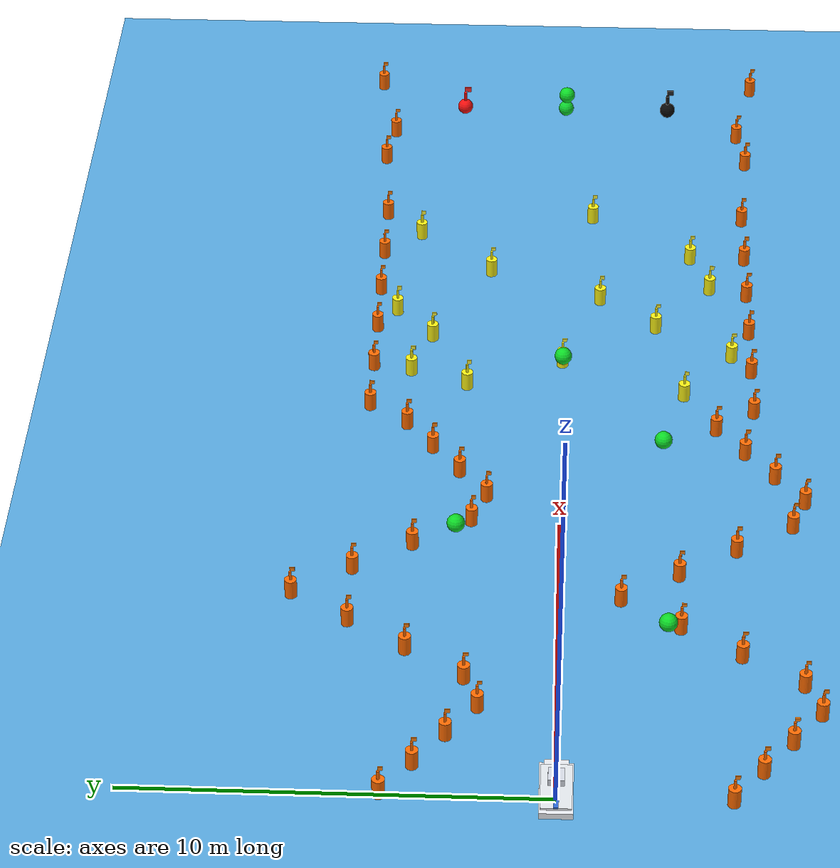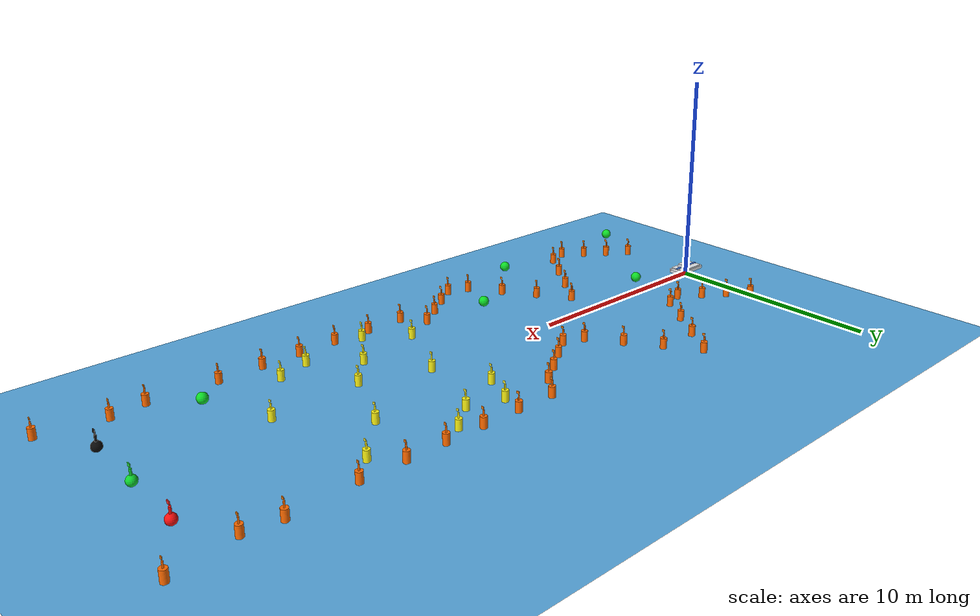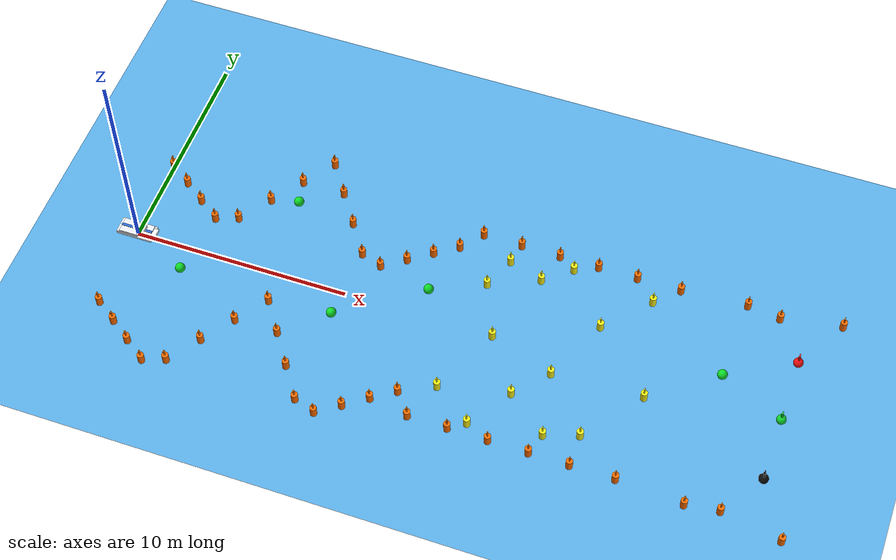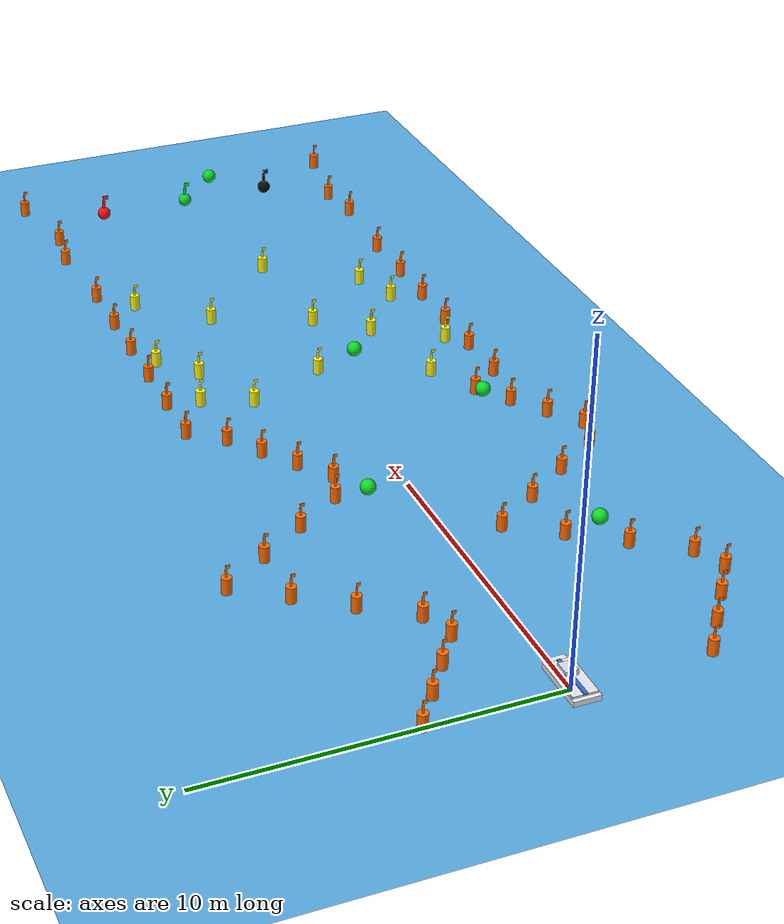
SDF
<?xml version="1.0" ?>
<sdf version="1.9">
  <world name="water_world">

    <!-- FIX: Improved physics for stable floating boat (less vibration, better damping) -->
    <physics name="4ms" type="ode">
      <max_step_size>0.004</max_step_size>
      <real_time_factor>1.0</real_time_factor>
      <gravity>0 0 -9.81</gravity>
      <ode>
        <!-- Remove preset="quick" (not supported in Gazebo Fortress) - use standard parameters instead -->
        <solver>
          <type>quick</type>
          <iters>50</iters>
          <precon_iters>0</precon_iters>
          <sor>1.3</sor>
          <use_dynamic_moi_rescaling>true</use_dynamic_moi_rescaling>
        </solver>
        <constraints>
          <cfm>0.01</cfm>
          <erp>0.8</erp>
          <contact_max_correcting_vel>1.0</contact_max_correcting_vel>
          <contact_surface_layer>0.01</contact_surface_layer>
        </constraints>
      </ode>
    </physics>

    <plugin filename="libignition-gazebo-physics-system.so" name="ignition::gazebo::systems::Physics"/>
    <plugin filename="libignition-gazebo-user-commands-system.so" name="ignition::gazebo::systems::UserCommands"/>
    <plugin filename="libignition-gazebo-scene-broadcaster-system.so" name="ignition::gazebo::systems::SceneBroadcaster"/>
    <plugin filename="libignition-gazebo-sensors-system.so" name="ignition::gazebo::systems::Sensors">
      <render_engine>ogre2</render_engine>
    </plugin>
    <plugin filename="libignition-gazebo-buoyancy-system.so" name="ignition::gazebo::systems::Buoyancy">
      <graded_buoyancy>
        <default_density>1000</default_density>
        <density_change>
          <above_depth>0</above_depth>
          <density>1</density>
        </density_change>
      </graded_buoyancy>
      <!-- Buoyancy yalnızca duba modelleri; usv_model yok (SetEntityPose ile çakışmayı önler) -->
      <enable>boundary_buoy_orange_01</enable>
      <enable>usv_model</enable>
      <enable>boundary_buoy_orange_02</enable>
      <enable>boundary_buoy_orange_03</enable>
      <enable>boundary_buoy_orange_04</enable>
      <enable>boundary_buoy_orange_05</enable>
      <enable>boundary_buoy_orange_06</enable>
      <enable>boundary_buoy_orange_07</enable>
      <enable>boundary_buoy_orange_08</enable>
      <enable>boundary_buoy_orange_09</enable>
      <enable>boundary_buoy_orange_10</enable>
      <enable>boundary_buoy_orange_11</enable>
      <enable>boundary_buoy_orange_12</enable>
      <enable>boundary_buoy_orange_13</enable>
      <enable>boundary_buoy_orange_14</enable>
      <enable>boundary_buoy_orange_15</enable>
      <enable>boundary_buoy_orange_16</enable>
      <enable>boundary_buoy_orange_17</enable>
      <enable>boundary_buoy_orange_18</enable>
      <enable>boundary_buoy_orange_19</enable>
      <enable>boundary_buoy_orange_20</enable>
      <enable>boundary_buoy_orange_21</enable>
      <enable>boundary_buoy_orange_22</enable>
      <enable>boundary_buoy_orange_23</enable>
      <enable>boundary_buoy_orange_24</enable>
      <enable>boundary_buoy_orange_25</enable>
      <enable>boundary_buoy_orange_26</enable>
      <enable>boundary_buoy_orange_27</enable>
      <enable>boundary_buoy_orange_28</enable>
      <enable>boundary_buoy_orange_29</enable>
      <enable>boundary_buoy_orange_30</enable>
      <enable>boundary_buoy_orange_67</enable>
      <enable>boundary_buoy_orange_68</enable>
      <enable>boundary_buoy_orange_69</enable>
      <enable>boundary_buoy_orange_70</enable>
      <enable>boundary_buoy_orange_71</enable>
      <enable>boundary_buoy_orange_72</enable>
      <enable>boundary_buoy_orange_73</enable>
      <enable>boundary_buoy_orange_74</enable>
      <enable>boundary_buoy_orange_75</enable>
      <enable>boundary_buoy_orange_76</enable>
      <enable>boundary_buoy_orange_77</enable>
      <enable>boundary_buoy_orange_78</enable>
      <enable>boundary_buoy_orange_79</enable>
      <enable>boundary_buoy_orange_80</enable>
      <enable>boundary_buoy_orange_81</enable>
      <enable>boundary_buoy_orange_82</enable>
      <enable>boundary_buoy_orange_83</enable>
      <enable>boundary_buoy_orange_84</enable>
      <enable>obstacle_buoy_yellow_01</enable>
      <enable>obstacle_buoy_yellow_02</enable>
      <enable>obstacle_buoy_yellow_03</enable>
      <enable>obstacle_buoy_yellow_04</enable>
      <enable>obstacle_buoy_yellow_05</enable>
      <enable>obstacle_buoy_yellow_06</enable>
      <enable>obstacle_buoy_yellow_07</enable>
      <enable>obstacle_buoy_yellow_08</enable>
      <enable>obstacle_buoy_yellow_09</enable>
      <enable>obstacle_buoy_yellow_10</enable>
      <enable>obstacle_buoy_yellow_11</enable>
      <enable>obstacle_buoy_yellow_12</enable>
      <enable>obstacle_buoy_yellow_13</enable>
      <enable>obstacle_buoy_yellow_14</enable>
      <enable>target_buoy_red</enable>
      <enable>target_buoy_green</enable>
      <enable>target_buoy_black</enable>
    </plugin>

    <scene>
      <ambient>0.72 0.77 0.82 1</ambient>
      <background>0.80 0.89 0.98 1</background>
      <shadows>false</shadows>
    </scene>

    <light type="directional" name="sun">
      <cast_shadows>false</cast_shadows>
      <pose>0 0 16 0 0 -1.570796</pose>
      <diffuse>0.92 0.92 0.92 1</diffuse>
      <specular>0.18 0.18 0.18 1</specular>
      <attenuation>
        <range>1200</range>
        <constant>0.9</constant>
        <linear>0.01</linear>
        <quadratic>0.001</quadratic>
      </attenuation>
      <direction>-0.35 -0.15 -0.92</direction>
    </light>

    <model name="water_plane">
      <static>true</static>
      <link name="link">
        <!-- FIX: Improved water plane contact physics for boat floating stability -->
        <collision name="collision">
          <geometry>
            <plane><normal>0 0 1</normal><size>80 80</size></plane>
          </geometry>
          <surface>
            <friction>
              <ode>
                <mu>0.1</mu>
                <mu2>0.1</mu2>
              </ode>
            </friction>
            <contact>
              <ode>
                <soft_cfm>0.001</soft_cfm>
                <soft_erp>0.9</soft_erp>
                <max_vel>0.1</max_vel>
              </ode>
            </contact>
          </surface>
        </collision>
        <visual name="visual">
          <geometry>
            <plane><normal>0 0 1</normal><size>80 80</size></plane>
          </geometry>
          <material>
            <ambient>0.35 0.67 0.89 1</ambient>
            <diffuse>0.35 0.67 0.89 1</diffuse>
            <specular>0.08 0.08 0.08 1</specular>
          </material>
        </visual>
      </link>
    </model>

    <!-- PARKUR 1: Zigzag slalom koridor                  -->
    <!-- Merkez: (0,0)→(2.5,3.5)→(-2.5,7)→(2.5,10.5)→(0,14) -->
    <!-- Genişlik: 8 m | Aralık: 1 m | 3 kıvrım          -->
    <include><uri>model://boundary_buoy_orange</uri><name>boundary_buoy_orange_01</name><pose>0 4 0 0 0 -1.570796</pose></include>
    <include><uri>model://boundary_buoy_orange</uri><name>boundary_buoy_orange_02</name><pose>1 3.29 0 0 0 -1.570796</pose></include>
    <include><uri>model://boundary_buoy_orange</uri><name>boundary_buoy_orange_03</name><pose>2 2.57 0 0 0 -1.570796</pose></include>
    <include><uri>model://boundary_buoy_orange</uri><name>boundary_buoy_orange_04</name><pose>3 1.86 0 0 0 -1.570796</pose></include>
    <include><uri>model://boundary_buoy_orange</uri><name>boundary_buoy_orange_05</name><pose>4 2.21 0 0 0 -1.570796</pose></include>
    <include><uri>model://boundary_buoy_orange</uri><name>boundary_buoy_orange_06</name><pose>5 3.64 0 0 0 -1.570796</pose></include>
    <include><uri>model://boundary_buoy_orange</uri><name>boundary_buoy_orange_07</name><pose>6 5.07 0 0 0 -1.570796</pose></include>
    <include><uri>model://boundary_buoy_orange</uri><name>boundary_buoy_orange_08</name><pose>7 6.5 0 0 0 -1.570796</pose></include>
    <include><uri>model://boundary_buoy_orange</uri><name>boundary_buoy_orange_09</name><pose>8 5.07 0 0 0 -1.570796</pose></include>
    <include><uri>model://boundary_buoy_orange</uri><name>boundary_buoy_orange_10</name><pose>9 3.64 0 0 0 -1.570796</pose></include>
    <include><uri>model://boundary_buoy_orange</uri><name>boundary_buoy_orange_11</name><pose>10 2.21 0 0 0 -1.570796</pose></include>
    <include><uri>model://boundary_buoy_orange</uri><name>boundary_buoy_orange_12</name><pose>11 1.86 0 0 0 -1.570796</pose></include>
    <include><uri>model://boundary_buoy_orange</uri><name>boundary_buoy_orange_13</name><pose>12 2.57 0 0 0 -1.570796</pose></include>
    <include><uri>model://boundary_buoy_orange</uri><name>boundary_buoy_orange_14</name><pose>13 3.29 0 0 0 -1.570796</pose></include>
    <include><uri>model://boundary_buoy_orange</uri><name>boundary_buoy_orange_15</name><pose>14 4 0 0 0 -1.570796</pose></include>
    <include><uri>model://boundary_buoy_orange</uri><name>boundary_buoy_orange_16</name><pose>0 -4 0 0 0 -1.570796</pose></include>
    <include><uri>model://boundary_buoy_orange</uri><name>boundary_buoy_orange_17</name><pose>1 -4.71 0 0 0 -1.570796</pose></include>
    <include><uri>model://boundary_buoy_orange</uri><name>boundary_buoy_orange_18</name><pose>2 -5.43 0 0 0 -1.570796</pose></include>
    <include><uri>model://boundary_buoy_orange</uri><name>boundary_buoy_orange_19</name><pose>3 -6.14 0 0 0 -1.570796</pose></include>
    <include><uri>model://boundary_buoy_orange</uri><name>boundary_buoy_orange_20</name><pose>4 -5.79 0 0 0 -1.570796</pose></include>
    <include><uri>model://boundary_buoy_orange</uri><name>boundary_buoy_orange_21</name><pose>5 -4.36 0 0 0 -1.570796</pose></include>
    <include><uri>model://boundary_buoy_orange</uri><name>boundary_buoy_orange_22</name><pose>6 -2.93 0 0 0 -1.570796</pose></include>
    <include><uri>model://boundary_buoy_orange</uri><name>boundary_buoy_orange_23</name><pose>7 -1.5 0 0 0 -1.570796</pose></include>
    <include><uri>model://boundary_buoy_orange</uri><name>boundary_buoy_orange_24</name><pose>8 -2.93 0 0 0 -1.570796</pose></include>
    <include><uri>model://boundary_buoy_orange</uri><name>boundary_buoy_orange_25</name><pose>9 -4.36 0 0 0 -1.570796</pose></include>
    <include><uri>model://boundary_buoy_orange</uri><name>boundary_buoy_orange_26</name><pose>10 -5.79 0 0 0 -1.570796</pose></include>
    <include><uri>model://boundary_buoy_orange</uri><name>boundary_buoy_orange_27</name><pose>11 -6.14 0 0 0 -1.570796</pose></include>
    <include><uri>model://boundary_buoy_orange</uri><name>boundary_buoy_orange_28</name><pose>12 -5.43 0 0 0 -1.570796</pose></include>
    <include><uri>model://boundary_buoy_orange</uri><name>boundary_buoy_orange_29</name><pose>13 -4.71 0 0 0 -1.570796</pose></include>
    <include><uri>model://boundary_buoy_orange</uri><name>boundary_buoy_orange_30</name><pose>14 -4 0 0 0 -1.570796</pose></include>

    <!-- PARKUR 2: Engel kaçınma                         -->
    <!-- Turuncu sınır dubalar + sarı engel dubalar       -->
    <include><uri>model://boundary_buoy_orange</uri><name>boundary_buoy_orange_67</name><pose>14.8 5 0 0 0 -1.570796</pose></include>
    <include><uri>model://boundary_buoy_orange</uri><name>boundary_buoy_orange_68</name><pose>14.8 -5 0 0 0 -1.570796</pose></include>
    <include><uri>model://boundary_buoy_orange</uri><name>boundary_buoy_orange_69</name><pose>16.6 5 0 0 0 -1.570796</pose></include>
    <include><uri>model://boundary_buoy_orange</uri><name>boundary_buoy_orange_70</name><pose>16.6 -5 0 0 0 -1.570796</pose></include>
    <include><uri>model://boundary_buoy_orange</uri><name>boundary_buoy_orange_71</name><pose>18.4 5 0 0 0 -1.570796</pose></include>
    <include><uri>model://boundary_buoy_orange</uri><name>boundary_buoy_orange_72</name><pose>18.4 -5 0 0 0 -1.570796</pose></include>
    <include><uri>model://boundary_buoy_orange</uri><name>boundary_buoy_orange_73</name><pose>20.2 5 0 0 0 -1.570796</pose></include>
    <include><uri>model://boundary_buoy_orange</uri><name>boundary_buoy_orange_74</name><pose>20.2 -5 0 0 0 -1.570796</pose></include>
    <include><uri>model://boundary_buoy_orange</uri><name>boundary_buoy_orange_75</name><pose>22 5 0 0 0 -1.570796</pose></include>
    <include><uri>model://boundary_buoy_orange</uri><name>boundary_buoy_orange_76</name><pose>22 -5 0 0 0 -1.570796</pose></include>
    <include><uri>model://boundary_buoy_orange</uri><name>boundary_buoy_orange_77</name><pose>24 5 0 0 0 -1.570796</pose></include>
    <include><uri>model://boundary_buoy_orange</uri><name>boundary_buoy_orange_78</name><pose>24 -5 0 0 0 -1.570796</pose></include>
    <include><uri>model://boundary_buoy_orange</uri><name>boundary_buoy_orange_79</name><pose>27 5.2 0 0 0 -1.570796</pose></include>
    <include><uri>model://boundary_buoy_orange</uri><name>boundary_buoy_orange_80</name><pose>27 -5.2 0 0 0 -1.570796</pose></include>

    <include><uri>model://obstacle_buoy_yellow</uri><name>obstacle_buoy_yellow_01</name><pose>15.5 -3.2 0 0 0 -1.570796</pose></include>
    <include><uri>model://obstacle_buoy_yellow</uri><name>obstacle_buoy_yellow_02</name><pose>15.8 2.5 0 0 0 -1.570796</pose></include>
    <include><uri>model://obstacle_buoy_yellow</uri><name>obstacle_buoy_yellow_03</name><pose>16.4 4 0 0 0 -1.570796</pose></include>
    <include><uri>model://obstacle_buoy_yellow</uri><name>obstacle_buoy_yellow_04</name><pose>16.9 0 0 0 0 -1.570796</pose></include>
    <include><uri>model://obstacle_buoy_yellow</uri><name>obstacle_buoy_yellow_05</name><pose>17.3 -4.5 0 0 0 -1.570796</pose></include>
    <include><uri>model://obstacle_buoy_yellow</uri><name>obstacle_buoy_yellow_06</name><pose>18 3.5 0 0 0 -1.570796</pose></include>
    <include><uri>model://obstacle_buoy_yellow</uri><name>obstacle_buoy_yellow_07</name><pose>18.6 -2.5 0 0 0 -1.570796</pose></include>
    <include><uri>model://obstacle_buoy_yellow</uri><name>obstacle_buoy_yellow_08</name><pose>19.2 4.5 0 0 0 -1.570796</pose></include>
    <include><uri>model://obstacle_buoy_yellow</uri><name>obstacle_buoy_yellow_09</name><pose>19.9 -1 0 0 0 -1.570796</pose></include>
    <include><uri>model://obstacle_buoy_yellow</uri><name>obstacle_buoy_yellow_10</name><pose>20.5 -4 0 0 0 -1.570796</pose></include>
    <include><uri>model://obstacle_buoy_yellow</uri><name>obstacle_buoy_yellow_11</name><pose>21.2 2 0 0 0 -1.570796</pose></include>
    <include><uri>model://obstacle_buoy_yellow</uri><name>obstacle_buoy_yellow_12</name><pose>22 -3.5 0 0 0 -1.570796</pose></include>
    <include><uri>model://obstacle_buoy_yellow</uri><name>obstacle_buoy_yellow_13</name><pose>23 4 0 0 0 -1.570796</pose></include>
    <include><uri>model://obstacle_buoy_yellow</uri><name>obstacle_buoy_yellow_14</name><pose>24 -0.8 0 0 0 -1.570796</pose></include>

    <!-- PARKUR 3: Hedef seçimi (kamikaze)                -->
    <!-- Kırmızı / Yeşil / Siyah hedef dubalar           -->
    <include><uri>model://boundary_buoy_orange</uri><name>boundary_buoy_orange_81</name><pose>28.5 5 0 0 0 -1.570796</pose></include>
    <include><uri>model://boundary_buoy_orange</uri><name>boundary_buoy_orange_82</name><pose>28.5 -5 0 0 0 -1.570796</pose></include>
    <include><uri>model://boundary_buoy_orange</uri><name>boundary_buoy_orange_83</name><pose>31.2 5.5 0 0 0 -1.570796</pose></include>
    <include><uri>model://boundary_buoy_orange</uri><name>boundary_buoy_orange_84</name><pose>31.2 -5.5 0 0 0 -1.570796</pose></include>

    <include><uri>model://target_buoy_red</uri><name>target_buoy_red</name><pose>29.8 3 0 0 0 -1.570796</pose></include>
    <include><uri>model://target_buoy_green</uri><name>target_buoy_green</name><pose>29.8 0 0 0 0 -1.570796</pose></include>
    <include><uri>model://target_buoy_black</uri><name>target_buoy_black</name><pose>29.8 -3 0 0 0 -1.570796</pose></include>

    <!-- WAYPOINT MARKERLERİ (yeşil küreler, r=0.22m)    -->
    <!--   WP1: P1 kıvrım 1   world(+2.5,  3.5)          -->
    <!--   WP2: P1 kıvrım 2   world(-2.5,  7.0)          -->
    <!--   WP3: P1 kıvrım 3   world(+2.5, 10.5)          -->
    <!--   WP4: P1 çıkış      world( 0.0, 14.0)          -->
    <!--   WP5: P2 sonu       world( 0.0, 27.0)          -->
    <model name="waypoint_p1_01">
      <!-- WP1 P1-kıvrım-1 | world(+2.5, 3.5) | GPS(-35.3632306, 149.1652645) -->
      <static>true</static>
      <pose>3.5 -2.5 2.35 0 0 -1.570796</pose>
      <link name="link">
        <visual name="visual">
          <geometry><sphere><radius>0.22</radius></sphere></geometry>
          <material>
            <ambient>0.05 0.85 0.15 1</ambient>
            <diffuse>0.05 0.85 0.15 1</diffuse>
            <specular>0.1 0.1 0.1 1</specular>
          </material>
        </visual>
      </link>
    </model>
    <model name="waypoint_p1_02">
      <!-- WP2 P1-kıvrım-2 | world(-2.5, 7.0) | GPS(-35.3631991, 149.1652095) -->
      <static>true</static>
      <pose>7 2.5 2.35 0 0 -1.570796</pose>
      <link name="link">
        <visual name="visual">
          <geometry><sphere><radius>0.22</radius></sphere></geometry>
          <material>
            <ambient>0.05 0.85 0.15 1</ambient>
            <diffuse>0.05 0.85 0.15 1</diffuse>
            <specular>0.1 0.1 0.1 1</specular>
          </material>
        </visual>
      </link>
    </model>
    <model name="waypoint_p1_03">
      <!-- WP3 P1-kıvrım-3 | world(+2.5, 10.5) | GPS(-35.3631677, 149.1652645) -->
      <static>true</static>
      <pose>10.5 -2.5 2.35 0 0 -1.570796</pose>
      <link name="link">
        <visual name="visual">
          <geometry><sphere><radius>0.22</radius></sphere></geometry>
          <material>
            <ambient>0.05 0.85 0.15 1</ambient>
            <diffuse>0.05 0.85 0.15 1</diffuse>
            <specular>0.1 0.1 0.1 1</specular>
          </material>
        </visual>
      </link>
    </model>
    <model name="waypoint_p1_04">
      <!-- WP4 P1-çıkış | world(+0.0, 14.0) | GPS(-35.3631362, 149.165237) -->
      <static>true</static>
      <pose>14 0 2.35 0 0 -1.570796</pose>
      <link name="link">
        <visual name="visual">
          <geometry><sphere><radius>0.22</radius></sphere></geometry>
          <material>
            <ambient>0.05 0.85 0.15 1</ambient>
            <diffuse>0.05 0.85 0.15 1</diffuse>
            <specular>0.1 0.1 0.1 1</specular>
          </material>
        </visual>
      </link>
    </model>
    <model name="waypoint_p2_end">
      <!-- WP5 P2-sonu | world(+0.0, 27.0) | GPS(-35.3630195, 149.165237) -->
      <static>true</static>
      <pose>27 0 2.35 0 0 -1.570796</pose>
      <link name="link">
        <visual name="visual">
          <geometry><sphere><radius>0.22</radius></sphere></geometry>
          <material>
            <ambient>0.05 0.85 0.15 1</ambient>
            <diffuse>0.05 0.85 0.15 1</diffuse>
            <specular>0.1 0.1 0.1 1</specular>
          </material>
        </visual>
      </link>
    </model>
    <include>
      <uri>model://usv_model</uri>
      <name>usv_model</name>
      <pose>0 0 0.16 0 0 0</pose>
    </include>

  </world>
</sdf>

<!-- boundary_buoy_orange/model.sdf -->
<sdf version="1.9">
  <model name="boundary_buoy_orange">
    <!-- Simulation colors must match perception class colors. -->
    <static>true</static>
    <link name="link">
      <collision name="body_collision">
        <pose>0 0 0.25 0 0 0</pose>
        <geometry>
          <cylinder>
            <radius>0.15</radius>
            <length>0.50</length>
          </cylinder>
        </geometry>
      </collision>
      <collision name="mast_collision">
        <pose>0 0 0.62 0 0 0</pose>
        <geometry>
          <cylinder>
            <radius>0.035</radius>
            <length>0.24</length>
          </cylinder>
        </geometry>
      </collision>
      <visual name="body_visual">
        <pose>0 0 0.25 0 0 0</pose>
        <geometry>
          <cylinder>
            <radius>0.15</radius>
            <length>0.50</length>
          </cylinder>
        </geometry>
        <material>
          <ambient>1.00 0.42 0.00 1</ambient>
          <diffuse>1.00 0.42 0.00 1</diffuse>
          <specular>0.10 0.10 0.10 1</specular>
        </material>
      </visual>
      <visual name="mast_visual">
        <pose>0 0 0.62 0 0 0</pose>
        <geometry>
          <cylinder>
            <radius>0.035</radius>
            <length>0.24</length>
          </cylinder>
        </geometry>
        <material>
          <ambient>1.00 0.42 0.00 1</ambient>
          <diffuse>1.00 0.42 0.00 1</diffuse>
        </material>
      </visual>
      <visual name="flag_visual">
        <pose>0.05 0 0.82 0 0 0</pose>
        <geometry>
          <box>
            <size>0.12 0.03 0.10</size>
          </box>
        </geometry>
        <material>
          <ambient>1.00 0.52 0.08 1</ambient>
          <diffuse>1.00 0.52 0.08 1</diffuse>
        </material>
      </visual>
    </link>
  </model>
</sdf>

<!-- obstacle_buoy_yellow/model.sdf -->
<sdf version="1.9">
  <model name="obstacle_buoy_yellow">
    <!-- Simulation colors must match perception class colors. -->
    <static>true</static>
    <link name="link">
      <collision name="body_collision">
        <pose>0 0 0.25 0 0 0</pose>
        <geometry>
          <cylinder>
            <radius>0.15</radius>
            <length>0.50</length>
          </cylinder>
        </geometry>
      </collision>
      <collision name="mast_collision">
        <pose>0 0 0.62 0 0 0</pose>
        <geometry>
          <cylinder>
            <radius>0.035</radius>
            <length>0.24</length>
          </cylinder>
        </geometry>
      </collision>
      <visual name="body_visual">
        <pose>0 0 0.25 0 0 0</pose>
        <geometry>
          <cylinder>
            <radius>0.15</radius>
            <length>0.50</length>
          </cylinder>
        </geometry>
        <material>
          <ambient>0.98 0.95 0.08 1</ambient>
          <diffuse>0.98 0.95 0.08 1</diffuse>
          <specular>0.10 0.10 0.10 1</specular>
        </material>
      </visual>
      <visual name="mast_visual">
        <pose>0 0 0.62 0 0 0</pose>
        <geometry>
          <cylinder>
            <radius>0.035</radius>
            <length>0.24</length>
          </cylinder>
        </geometry>
        <material>
          <ambient>0.98 0.95 0.08 1</ambient>
          <diffuse>0.98 0.95 0.08 1</diffuse>
        </material>
      </visual>
      <visual name="flag_visual">
        <pose>0.05 0 0.82 0 0 0</pose>
        <geometry>
          <box>
            <size>0.12 0.03 0.10</size>
          </box>
        </geometry>
        <material>
          <ambient>1.00 0.98 0.25 1</ambient>
          <diffuse>1.00 0.98 0.25 1</diffuse>
        </material>
      </visual>
    </link>
  </model>
</sdf>

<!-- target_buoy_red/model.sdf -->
<sdf version="1.9">
  <model name="target_buoy_red">
    <!-- Simulation colors must match perception class colors. -->
    <static>true</static>
    <link name="link">
      <collision name="body_collision">
        <pose>0 0 0.24 0 0 0</pose>
        <geometry>
          <sphere>
            <radius>0.22</radius>
          </sphere>
        </geometry>
      </collision>
      <collision name="mast_collision">
        <pose>0 0 0.54 0 0 0</pose>
        <geometry>
          <cylinder>
            <radius>0.05</radius>
            <length>0.34</length>
          </cylinder>
        </geometry>
      </collision>
      <visual name="body_visual">
        <pose>0 0 0.24 0 0 0</pose>
        <geometry>
          <sphere>
            <radius>0.22</radius>
          </sphere>
        </geometry>
        <material>
          <ambient>0.95 0.06 0.06 1</ambient>
          <diffuse>0.95 0.06 0.06 1</diffuse>
          <specular>0.12 0.12 0.12 1</specular>
        </material>
      </visual>
      <visual name="mast_visual">
        <pose>0 0 0.54 0 0 0</pose>
        <geometry>
          <cylinder>
            <radius>0.05</radius>
            <length>0.34</length>
          </cylinder>
        </geometry>
        <material>
          <ambient>0.95 0.06 0.06 1</ambient>
          <diffuse>0.95 0.06 0.06 1</diffuse>
        </material>
      </visual>
      <visual name="flag_visual">
        <pose>0.07 0 0.82 0 0 0</pose>
        <geometry>
          <box>
            <size>0.18 0.04 0.14</size>
          </box>
        </geometry>
        <material>
          <ambient>1.0 0.18 0.18 1</ambient>
          <diffuse>1.0 0.18 0.18 1</diffuse>
        </material>
      </visual>
    </link>
  </model>
</sdf>

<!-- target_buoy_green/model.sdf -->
<sdf version="1.9">
  <model name="target_buoy_green">
    <!-- Simulation colors must match perception class colors. -->
    <static>true</static>
    <link name="link">
      <collision name="body_collision">
        <pose>0 0 0.24 0 0 0</pose>
        <geometry>
          <sphere>
            <radius>0.22</radius>
          </sphere>
        </geometry>
      </collision>
      <collision name="mast_collision">
        <pose>0 0 0.54 0 0 0</pose>
        <geometry>
          <cylinder>
            <radius>0.05</radius>
            <length>0.34</length>
          </cylinder>
        </geometry>
      </collision>
      <visual name="body_visual">
        <pose>0 0 0.24 0 0 0</pose>
        <geometry>
          <sphere>
            <radius>0.22</radius>
          </sphere>
        </geometry>
        <material>
          <ambient>0.05 0.82 0.18 1</ambient>
          <diffuse>0.05 0.82 0.18 1</diffuse>
          <specular>0.10 0.10 0.10 1</specular>
        </material>
      </visual>
      <visual name="mast_visual">
        <pose>0 0 0.54 0 0 0</pose>
        <geometry>
          <cylinder>
            <radius>0.05</radius>
            <length>0.34</length>
          </cylinder>
        </geometry>
        <material>
          <ambient>0.05 0.82 0.18 1</ambient>
          <diffuse>0.05 0.82 0.18 1</diffuse>
        </material>
      </visual>
      <visual name="flag_visual">
        <pose>0.07 0 0.82 0 0 0</pose>
        <geometry>
          <box>
            <size>0.18 0.04 0.14</size>
          </box>
        </geometry>
        <material>
          <ambient>0.16 0.92 0.30 1</ambient>
          <diffuse>0.16 0.92 0.30 1</diffuse>
        </material>
      </visual>
    </link>
  </model>
</sdf>

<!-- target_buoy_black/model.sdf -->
<sdf version="1.9">
  <model name="target_buoy_black">
    <!-- Simulation colors must match perception class colors. -->
    <static>true</static>
    <link name="link">
      <collision name="body_collision">
        <pose>0 0 0.24 0 0 0</pose>
        <geometry>
          <sphere>
            <radius>0.22</radius>
          </sphere>
        </geometry>
      </collision>
      <collision name="mast_collision">
        <pose>0 0 0.54 0 0 0</pose>
        <geometry>
          <cylinder>
            <radius>0.05</radius>
            <length>0.34</length>
          </cylinder>
        </geometry>
      </collision>
      <visual name="body_visual">
        <pose>0 0 0.24 0 0 0</pose>
        <geometry>
          <sphere>
            <radius>0.22</radius>
          </sphere>
        </geometry>
        <material>
          <ambient>0.04 0.04 0.04 1</ambient>
          <diffuse>0.04 0.04 0.04 1</diffuse>
          <specular>0.02 0.02 0.02 1</specular>
        </material>
      </visual>
      <visual name="mast_visual">
        <pose>0 0 0.54 0 0 0</pose>
        <geometry>
          <cylinder>
            <radius>0.05</radius>
            <length>0.34</length>
          </cylinder>
        </geometry>
        <material>
          <ambient>0.08 0.08 0.08 1</ambient>
          <diffuse>0.08 0.08 0.08 1</diffuse>
        </material>
      </visual>
      <visual name="flag_visual">
        <pose>0.07 0 0.82 0 0 0</pose>
        <geometry>
          <box>
            <size>0.18 0.04 0.14</size>
          </box>
        </geometry>
        <material>
          <ambient>0.14 0.14 0.14 1</ambient>
          <diffuse>0.14 0.14 0.14 1</diffuse>
        </material>
      </visual>
    </link>
  </model>
</sdf>

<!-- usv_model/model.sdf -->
<sdf version="1.9">
  <model name="usv_model">
    <static>false</static>
    <pose>0 0 0.16 0 0 0</pose>

    <link name="base_link">
      <!-- SITL SetEntityPose yetkisi kaldirildi, fizik motoruna birakildi -->
      <gravity>true</gravity>
      <!-- Mass ve damping for stable motion on water -->
      <!-- FIX: Increased damping to reduce vibration, adjusted inertia for better stability -->
      <!-- m=18 kg; esdeger kutu ~ hull_collision 1.62 x 0.81 x 0.35 m, COM merkezde -->
      <inertial>
        <pose>0 0 0 0 0 0</pose>
        <mass>18.0</mass>
        <inertia>
          <ixx>1.168</ixx>
          <ixy>0</ixy>
          <ixz>0</ixz>
          <iyy>4.120</iyy>
          <iyz>0</iyz>
          <izz>4.921</izz>
        </inertia>
        <linear_damping>2.0</linear_damping>
        <angular_damping>1.0</angular_damping>
      </inertial>
      <!-- Basit tekne silueti: gergedan + guverte + konut; carpisma tek kutu. -->
      <!-- FIX: Fixed collision physics, better contact damping to reduce vibration -->
      <collision name="hull_collision">
        <pose>0 0 0.15 0 0 0</pose>
        <geometry>
          <box><size>1.62 0.81 0.35</size></box>
        </geometry>
        <surface>
          <friction>
            <ode>
              <mu>0.3</mu>
              <mu2>0.3</mu2>
            </ode>
          </friction>
          <contact>
            <ode>
              <soft_cfm>0.001</soft_cfm>
              <soft_erp>0.8</soft_erp>
              <max_vel>0.1</max_vel>
            </ode>
          </contact>
        </surface>
      </collision>

      <visual name="hull_bottom">
        <pose>0 0 0.12 0 0 0</pose>
        <geometry>
          <box><size>1.68 0.78 0.16</size></box>
        </geometry>
        <material>
          <ambient>0.92 0.93 0.95 1</ambient>
          <diffuse>0.94 0.95 0.97 1</diffuse>
          <specular>0.12 0.12 0.14 1</specular>
        </material>
      </visual>

      <visual name="deck">
        <pose>0 0 0.22 0 0 0</pose>
        <geometry>
          <box><size>1.45 0.72 0.08</size></box>
        </geometry>
        <material>
          <ambient>0.88 0.90 0.92 1</ambient>
          <diffuse>0.90 0.92 0.94 1</diffuse>
        </material>
      </visual>

      <visual name="stripe">
        <pose>0 0 0.26 0 0 0</pose>
        <geometry>
          <box><size>1.46 0.12 0.04</size></box>
        </geometry>
        <material>
          <ambient>0.15 0.35 0.72 1</ambient>
          <diffuse>0.18 0.42 0.85 1</diffuse>
        </material>
      </visual>

      <visual name="bow">
        <pose>0.78 0 0.14 0 0 0</pose>
        <geometry>
          <box><size>0.32 0.55 0.14</size></box>
        </geometry>
        <material>
          <ambient>0.90 0.91 0.93 1</ambient>
          <diffuse>0.92 0.93 0.95 1</diffuse>
        </material>
      </visual>

      <visual name="cabin">
        <pose>0.22 0 0.34 0 0 0</pose>
        <geometry>
          <box><size>0.42 0.38 0.18</size></box>
        </geometry>
        <material>
          <ambient>0.82 0.84 0.88 1</ambient>
          <diffuse>0.85 0.87 0.91 1</diffuse>
        </material>
      </visual>

      <!-- +X burun yönü; önceki 0.65 gövde ortasına yakındı, simde "kamera geriden" hissi için buruna yaklaştırıldı -->
      <sensor name="camera_sensor" type="camera">
        <pose>0.78 0 0.48 0 0.10 0</pose>
        <camera>
          <horizontal_fov>1.5708</horizontal_fov>
          <image>
            <width>640</width>
            <height>360</height>
            <format>R8G8B8</format>
          </image>
          <clip>
            <near>0.1</near>
            <far>50</far>
          </clip>
        </camera>
        <always_on>1</always_on>
        <update_rate>30</update_rate>
        <visualize>false</visualize>
        <topic>/camera/image_raw</topic>
      </sensor>

      <sensor name="lidar_sensor" type="gpu_lidar">
        <pose>0.65 0 0.28 0 0 0</pose>
        <topic>/scan</topic>
        <always_on>true</always_on>
        <update_rate>30</update_rate>
        <visualize>false</visualize>
        <ray>
          <scan>
            <horizontal>
              <samples>720</samples>
              <resolution>1</resolution>
              <min_angle>-3.14159</min_angle>
              <max_angle>3.14159</max_angle>
            </horizontal>
            <vertical>
              <samples>1</samples>
            </vertical>
          </scan>
          <range>
            <min>0.08</min>
            <max>20.0</max>
            <resolution>0.01</resolution>
          </range>
        </ray>
      </sensor>
    </link>

    <!-- Motor left thruster (virtual joint for control) -->
    <link name="motor_left_link">
      <gravity>false</gravity>
      <inertial>
        <mass>0.01</mass>
        <inertia>
          <ixx>0.0001</ixx>
          <ixy>0</ixy>
          <ixz>0</ixz>
          <iyy>0.0001</iyy>
          <iyz>0</iyz>
          <izz>0.0001</izz>
        </inertia>
      </inertial>
      <!-- Dummy collision to prevent ODE geometry crash -->
      <collision name="motor_left_collision">
        <geometry>
          <sphere><radius>0.01</radius></sphere>
        </geometry>
      </collision>
    </link>

    <!-- Motor right thruster (virtual joint for control) -->
    <link name="motor_right_link">
      <gravity>false</gravity>
      <inertial>
        <mass>0.01</mass>
        <inertia>
          <ixx>0.0001</ixx>
          <ixy>0</ixy>
          <ixz>0</ixz>
          <iyy>0.0001</iyy>
          <iyz>0</iyz>
          <izz>0.0001</izz>
        </inertia>
      </inertial>
      <!-- Dummy collision to prevent ODE geometry crash -->
      <collision name="motor_right_collision">
        <geometry>
          <sphere><radius>0.01</radius></sphere>
        </geometry>
      </collision>
    </link>

    <!-- Left motor joint: for force application -->
    <joint name="motor_left_joint" type="revolute">
      <parent>base_link</parent>
      <child>motor_left_link</child>
      <axis>
        <xyz>0 1 0</xyz>
      </axis>
      <limit>
        <lower>-3.14159</lower>
        <upper>3.14159</upper>
        <effort>50</effort>
        <velocity>100</velocity>
      </limit>
    </joint>

    <!-- Right motor joint: for force application -->
    <joint name="motor_right_joint" type="revolute">
      <parent>base_link</parent>
      <child>motor_right_link</child>
      <axis>
        <xyz>0 1 0</xyz>
      </axis>
      <limit>
        <lower>-3.14159</lower>
        <upper>3.14159</upper>
        <effort>50</effort>
        <velocity>100</velocity>
      </limit>
    </joint>

    <!-- Odometry Publisher for JSON Backend -->
    <plugin filename="libignition-gazebo-odometry-publisher-system.so" name="ignition::gazebo::systems::OdometryPublisher">
      <odom_publish_frequency>100</odom_publish_frequency>
      <odom_frame>world</odom_frame>
      <robot_base_frame>base_link</robot_base_frame>
      <odom_topic>/model/usv_model/odometry</odom_topic>
    </plugin>

    <plugin filename="libignition-gazebo-velocity-control-system.so" name="ignition::gazebo::systems::VelocityControl">
      <link_name>base_link</link_name>
      <topic>/cmd_vel</topic>
      <initial_linear>0 0 0</initial_linear>
      <initial_angular>0 0 0</initial_angular>
    </plugin>

  </model>
</sdf>
